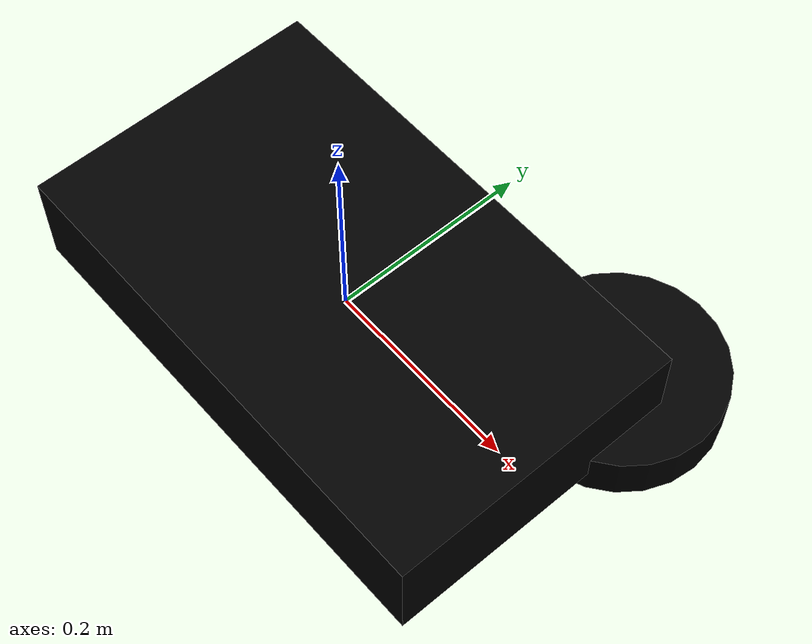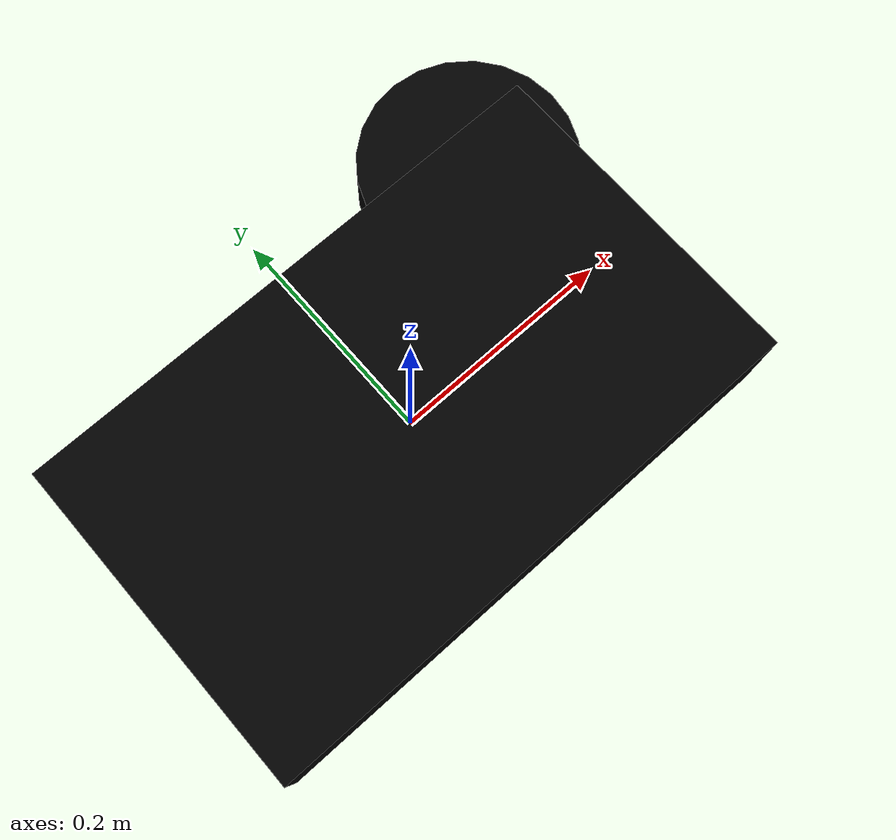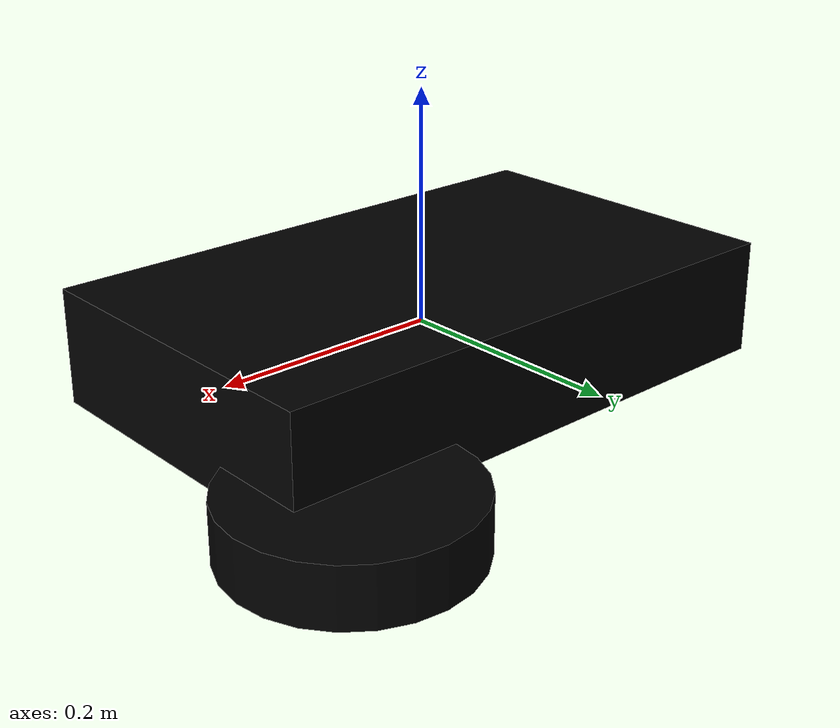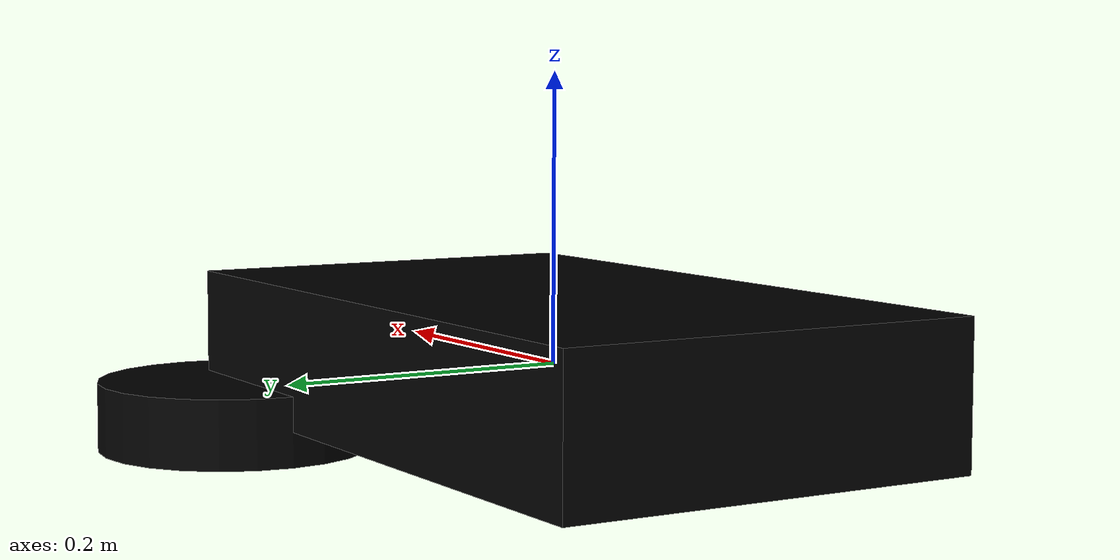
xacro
<?xml version="1.0"?>
<robot name="simple_robot">
  <link name="base_link">
    <visual>
      <geometry>
        <box size="0.5 0.3 0.1"/>
      </geometry>
      <material name="blue">
        <color rgba="0 0 0 1"/>
      </material>
    </visual>
    <collision>
      <geometry>
        <box size="0.5 0.3 0.1"/>
      </geometry>
    </collision>
    <inertial>
      <mass value="5.0"/>
      <inertia ixx="0.01" ixy="0.0" ixz="0.0" iyy="0.01" iyz="0.0" izz="0.01"/>
    </inertial>
  </link>

  <link name="wheel_link">
    <visual>
      <geometry>
        <cylinder radius="0.1" length="0.05"/>
      </geometry>
      <material name="black">
        <color rgba="0 0 0 1"/>
      </material>
    </visual>
    <collision>
      <geometry>
        <cylinder radius="0.1" length="0.05"/>
      </geometry>
    </collision>
    <inertial>
      <mass value="1.0"/>
      <inertia ixx="0.001" ixy="0.0" ixz="0.0" iyy="0.001" iyz="0.0" izz="0.001"/>
    </inertial>
  </link>

  <joint name="wheel_joint" type="continuous">
    <parent link="base_link"/>
    <child link="wheel_link"/>
    <origin xyz="0.2 0.15 -0.05" rpy="0 0 0"/>
    <axis xyz="0 1 0"/>
  </joint>
</robot>
